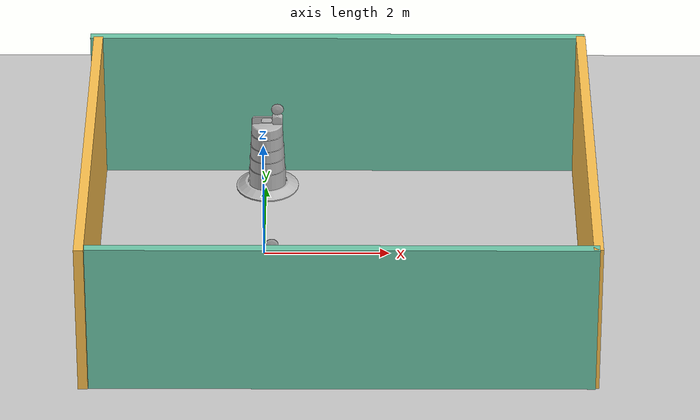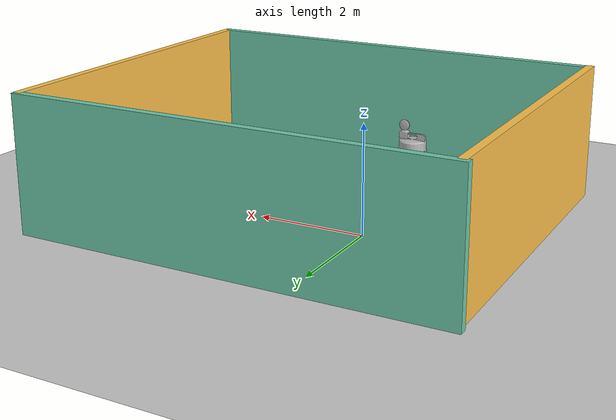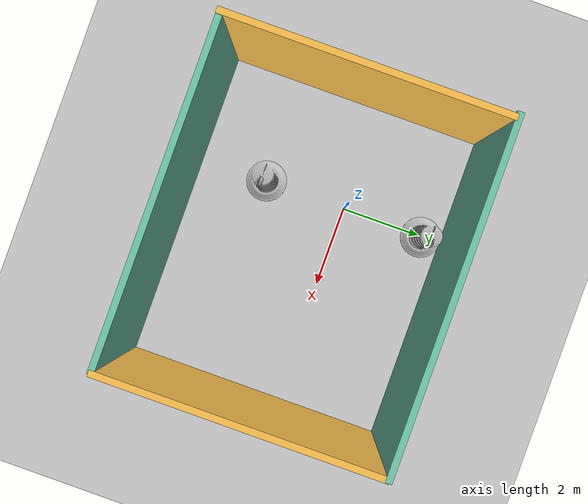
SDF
<sdf version="1.6">
 <world name="default">
  <light name="sun" type="directional">
   <pose>0 0 10 0 -0 0</pose>
   <diffuse>0.8 0.8 0.8 1</diffuse>
   <specular>0.1 0.1 0.1 1</specular>
   <attenuation>
    <range>1000</range>
    <constant>0.9</constant>
    <linear>0.01</linear>
    <quadratic>0.001</quadratic>
   </attenuation>
   <direction>-0.5 0.5 -1</direction>
  </light>
  <model name="ground_plane">
   <static>1</static>
   <link name="link">
    <collision name="collision">
     <geometry><plane><normal>0 0 1</normal><size>100 100</size></plane></geometry>
     <surface><friction><ode><mu>100</mu><mu2>50</mu2></ode></friction></surface>
    </collision>
    <visual name="visual">
     <cast_shadows>0</cast_shadows>
     <geometry><plane><normal>0 0 1</normal><size>100 100</size></plane></geometry>
     <material>
      <script><uri>file://media/materials/scripts/gazebo.material</uri><name>Gazebo/Grey</name></script>
     </material>
    </visual>
   </link>
  </model>
  <gravity>0 0 -9.8</gravity>
  <magnetic_field>6e-06 2.3e-05 -4.2e-05</magnetic_field>
  <atmosphere type="adiabatic"/>
  <physics name="default_physics" default="0" type="ode">
   <max_step_size>0.001</max_step_size>
   <real_time_factor>1</real_time_factor>
   <real_time_update_rate>1000</real_time_update_rate>
  </physics>
  <scene><ambient>0.4 0.4 0.4 1</ambient><background>0.7 0.7 0.7 1</background><shadows>1</shadows></scene>
  <spherical_coordinates>
   <surface_model>EARTH_WGS84</surface_model>
   <latitude_deg>0</latitude_deg>
   <longitude_deg>0</longitude_deg>
   <elevation>0</elevation>
   <heading_deg>0</heading_deg>
  </spherical_coordinates>
  <model name="pc2">
   <pose>1.16976 -0.596139 0 0 -0 0</pose>
   <link name="Wall_0">
    <collision name="Wall_0_Collision">
     <geometry><box><size>6.5 0.15 2.5</size></box></geometry>
     <pose>0 0 1.25 0 -0 0</pose>
    </collision>
    <visual name="Wall_0_Visual">
     <pose>0 0 1.25 0 -0 0</pose>
     <geometry><box><size>6.5 0.15 2.5</size></box></geometry>
     <material>
      <script><uri>file://media/materials/scripts/gazebo.material</uri><name>Gazebo/Grey</name></script>
      <ambient>1 0.764706 0.305882 1</ambient>
     </material>
    </visual>
    <pose>-3.87976 -0.048861 0 0 -0 1.5708</pose>
   </link>
   <link name="Wall_2">
    <collision name="Wall_2_Collision">
     <geometry><box><size>8 0.15 2.5</size></box></geometry>
     <pose>0 0 1.25 0 -0 0</pose>
    </collision>
    <visual name="Wall_2_Visual">
     <pose>0 0 1.25 0 -0 0</pose>
     <geometry><box><size>8 0.15 2.5</size></box></geometry>
     <material>
      <script><uri>file://media/materials/scripts/gazebo.material</uri><name>Gazebo/Grey</name></script>
      <ambient>0.435294 0.796078 0.67451 1</ambient>
     </material>
    </visual>
    <pose>-0.00842 3.22386 0 0 -0 3.14159</pose>
   </link>
   <link name="Wall_4">
    <collision name="Wall_4_Collision">
     <geometry><box><size>6.5 0.15 2.5</size></box></geometry>
     <pose>0 0 1.25 0 -0 0</pose>
    </collision>
    <visual name="Wall_4_Visual">
     <pose>0 0 1.25 0 -0 0</pose>
     <geometry><box><size>6.5 0.15 2.5</size></box></geometry>
     <material>
      <script><uri>file://media/materials/scripts/gazebo.material</uri><name>Gazebo/Grey</name></script>
      <ambient>1 0.764706 0.305882 1</ambient>
     </material>
    </visual>
    <pose>3.93342 -0.011158 0 0 -0 1.5708</pose>
   </link>
   <link name="Wall_6">
    <collision name="Wall_6_Collision">
     <geometry><box><size>7.75 0.15 2.5</size></box></geometry>
     <pose>0 0 1.25 0 -0 0</pose>
    </collision>
    <visual name="Wall_6_Visual">
     <pose>0 0 1.25 0 -0 0</pose>
     <geometry><box><size>7.75 0.15 2.5</size></box></geometry>
     <material>
      <script><uri>file://media/materials/scripts/gazebo.material</uri><name>Gazebo/Grey</name></script>
      <ambient>0.435294 0.796078 0.67451 1</ambient>
     </material>
    </visual>
    <pose>0.078175 -3.21339 0 0 -0 0</pose>
   </link>
   <static>1</static>
  </model>
  <model name="Construction Barrel">
   <static>1</static>
   <link name="link">
    <inertial>
     <pose>0 0 0.4 0 -0 0</pose>
     <mass>500</mass>
     <inertia><ixx>51.2096</ixx><iyy>51.2096</iyy><izz>25</izz><ixy>0</ixy><ixz>0</ixz><iyz>0</iyz></inertia>
    </inertial>
    <collision name="collision">
     <geometry>
      <mesh><uri>model://construction_barrel/meshes/construction_barrel.dae</uri><scale>1 1 1</scale></mesh>
     </geometry>
    </collision>
    <visual name="visual">
     <geometry>
      <mesh><uri>model://construction_barrel/meshes/construction_barrel.dae</uri><scale>1 1 1</scale></mesh>
     </geometry>
    </visual>
   </link>
   <pose>-0.009766 -2.04928 0 0 -0 0</pose>
  </model>
  <model name="Construction Barrel_0">
   <static>1</static>
   <link name="link">
    <inertial>
     <pose>0 0 0.4 0 -0 0</pose>
     <mass>500</mass>
     <inertia><ixx>51.2096</ixx><iyy>51.2096</iyy><izz>25</izz><ixy>0</ixy><ixz>0</ixz><iyz>0</iyz></inertia>
    </inertial>
    <collision name="collision">
     <geometry>
      <mesh><uri>model://construction_barrel/meshes/construction_barrel.dae</uri><scale>1 1 1</scale></mesh>
     </geometry>
    </collision>
    <visual name="visual">
     <geometry>
      <mesh><uri>model://construction_barrel/meshes/construction_barrel.dae</uri><scale>1 1 1</scale></mesh>
     </geometry>
    </visual>
   </link>
   <pose>0.019899 2.06693 0 0 -0 0</pose>
  </model>
 </world>
</sdf>
